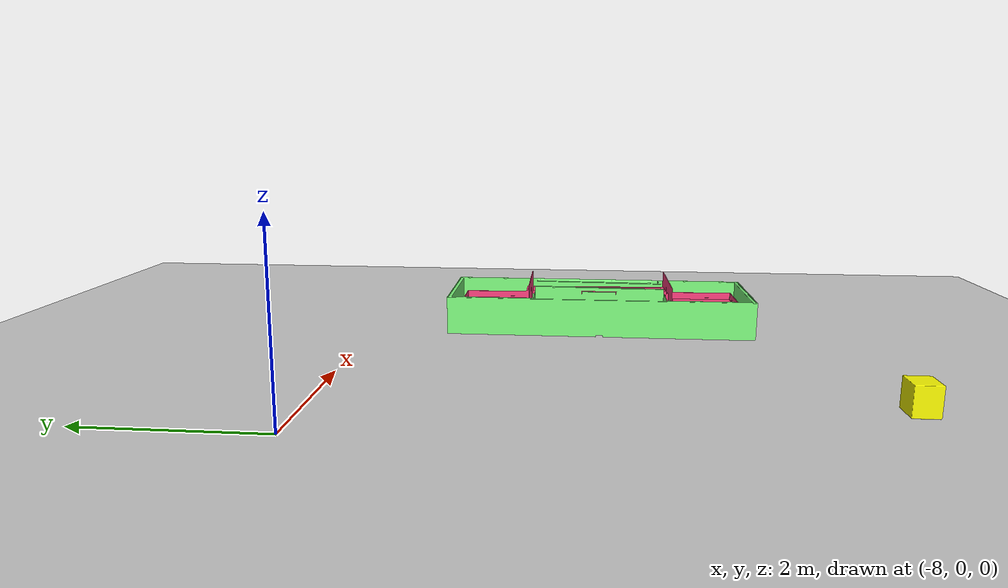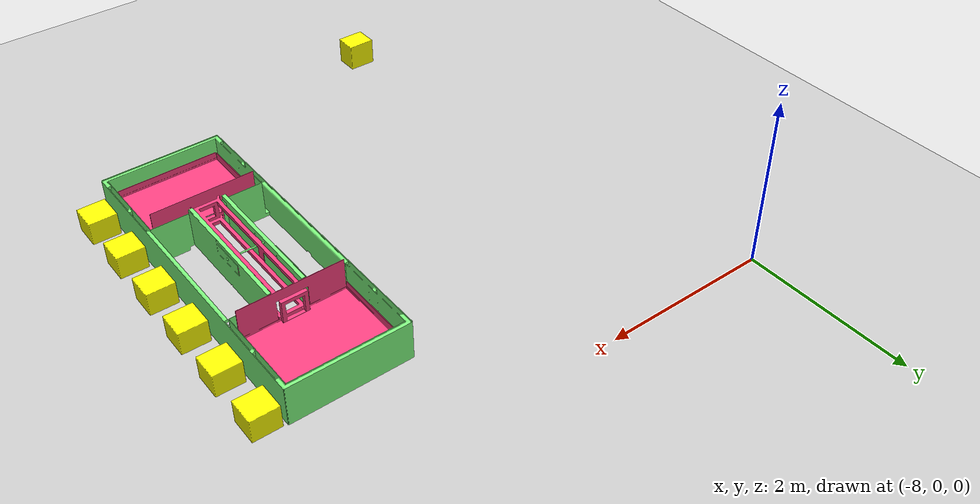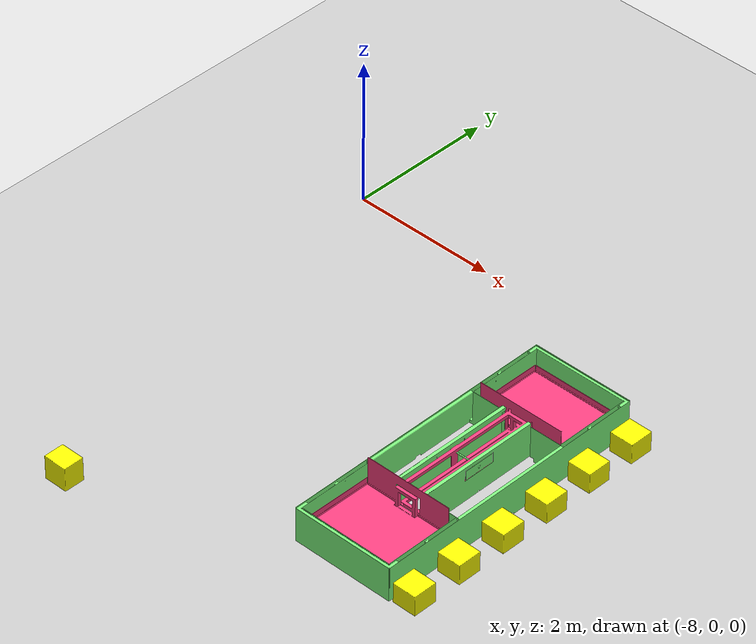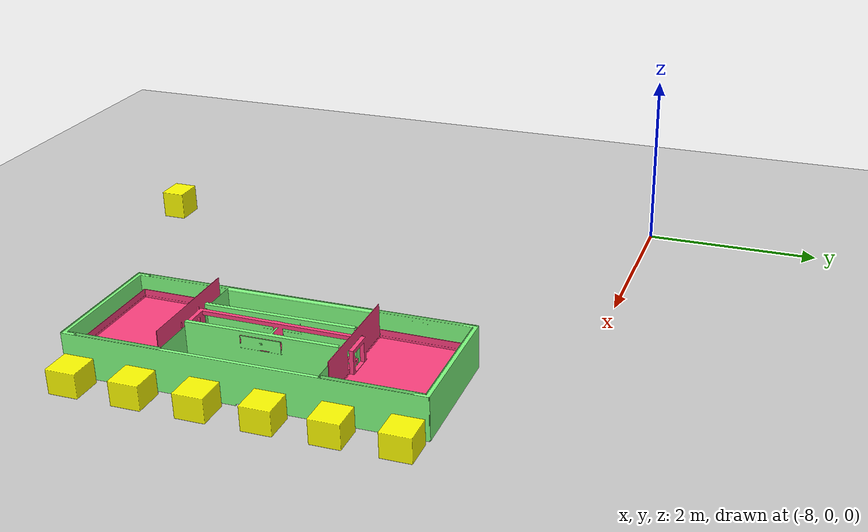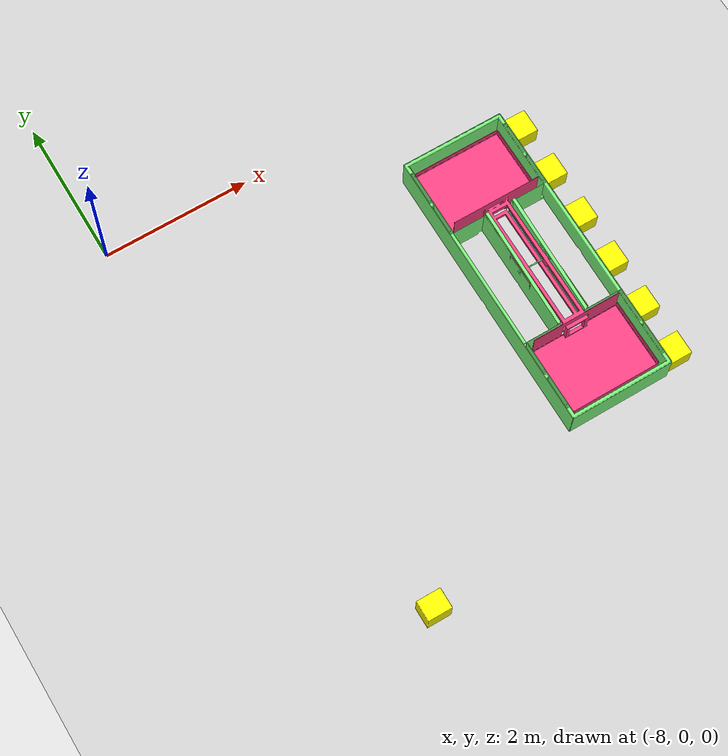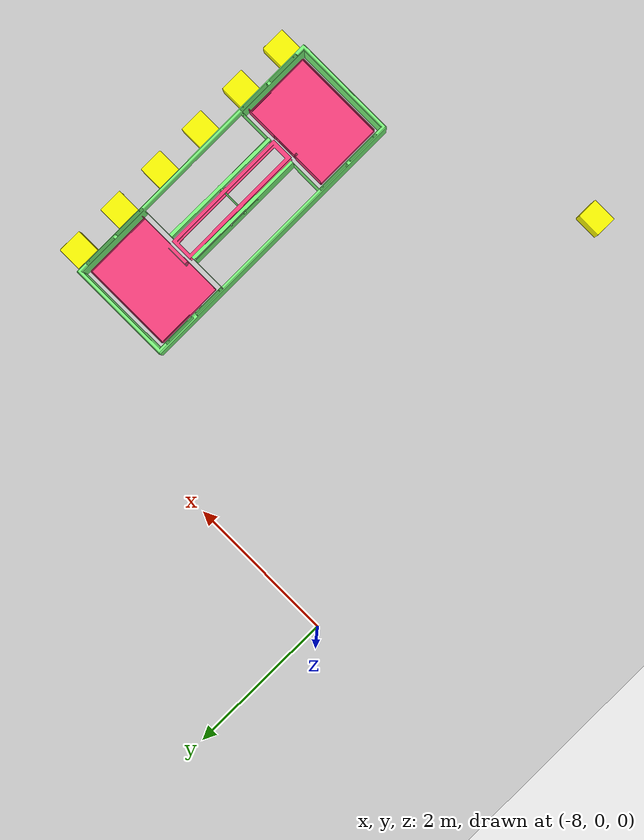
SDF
<sdf version="1.7">
 <world name="default">
  <model name="ground_plane">
   <static>1</static>
   <link name="link">
    <collision name="collision">
     <geometry><plane><normal>0 0 1</normal><size>100 100</size></plane></geometry>
     <surface>
      <contact><collide_bitmask>65535</collide_bitmask></contact>
      <friction><ode><mu>100</mu><mu2>50</mu2></ode></friction>
     </surface>
    </collision>
    <visual name="visual">
     <cast_shadows>0</cast_shadows>
     <geometry><plane><normal>0 0 1</normal><size>100 100</size></plane></geometry>
     <material>
      <script><uri>file://media/materials/scripts/gazebo.material</uri><name>Gazebo/Grey</name></script>
     </material>
    </visual>
   </link>
  </model>
  <model name="Cube">
   <pose>-6.83977 -5.82375 0.165099 1.57065 -0 5.3e-05</pose>
   <link name="Body">
    <pose>0 0 0.1397 1.5708 0 -1.5708</pose>
    <must_be_base_link>1</must_be_base_link>
    <velocity_decay><linear>0</linear><angular>0</angular></velocity_decay>
    <inertial>
     <mass>0.25</mass>
     <inertia><ixx>1</ixx><ixy>0</ixy><ixz>0</ixz><iyy>1</iyy><iyz>0</iyz><izz>1</izz></inertia>
    </inertial>
    <collision name="Body_collision">
     <pose>-0.1651 -0.1397 0.1651 0 -0 0</pose>
     <geometry><mesh><scale>1 1 1</scale><uri>model://Cube/meshes/Body_col.STL</uri></mesh></geometry>
     <surface>
      <contact><ode><kp>1e+06</kp><kd>2</kd></ode></contact>
      <friction><ode><mu>1</mu><mu2>1</mu2></ode></friction>
     </surface>
    </collision>
    <visual name="Body_visual">
     <pose>-0.1651 -0.1397 0.1651 0 -0 0</pose>
     <material><ambient>1 1 0 1</ambient><diffuse>1 1 0 1</diffuse></material>
     <geometry><mesh><scale>1 1 1</scale><uri>model://Cube/meshes/Body.STL</uri></mesh></geometry>
    </visual>
   </link>
  </model>
  <model name="Switch">
   <pose>-4.28075 -1.00838 0.02 0 -0 1.57424</pose>
   <link name="SwitchBase">
    <pose>-1.9493 -0.710661 0.235896 1.56084 -0.011168 -1.58453</pose>
    <velocity_decay><linear>0</linear><angular>0</angular></velocity_decay>
    <inertial>
     <mass>81.8371</mass>
     <inertia>
      <ixx>0.671725</ixx>
      <ixy>0.414975</ixy>
      <ixz>1.70825</ixz>
      <iyy>18.2757</iyy>
      <iyz>0.0226877</iyz>
      <izz>18.1735</izz>
     </inertia>
    </inertial>
    <collision name="SwitchBase_collision">
     <pose>0.002787 -0.234161 0.019236 0 -0 0</pose>
     <geometry><mesh><scale>1 1 1</scale><uri>model://Switch/meshes/SwitchBase_col.STL</uri></mesh></geometry>
     <surface><friction><ode><mu>1</mu><mu2>1</mu2></ode></friction></surface>
    </collision>
    <visual name="SwitchBase_visual">
     <pose>0.002787 -0.234161 0.019236 0 -0 0</pose>
     <material><ambient>0.501961 1 0.501961 1</ambient><diffuse>0.501961 1 0.501961 1</diffuse></material>
     <geometry><mesh><scale>1 1 1</scale><uri>model://Switch/meshes/SwitchBase.STL</uri></mesh></geometry>
    </visual>
   </link>
   <joint name="SwitchBase-World" type="fixed"><parent>world</parent><child>SwitchBase</child></joint>
   <link name="SwitchArm">
    <pose>-1.95097 -0.711214 0.27743 1.56084 -0.011168 -1.58453</pose>
    <velocity_decay><linear>0</linear><angular>0</angular></velocity_decay>
    <inertial>
     <mass>38.1968</mass>
     <inertia>
      <ixx>53.1684</ixx>
      <ixy>0.0207603</ixy>
      <ixz>0.709058</ixz>
      <iyy>55.0578</iyy>
      <iyz>0.00376744</iyz>
      <izz>1.94863</izz>
     </inertia>
    </inertial>
    <collision name="SwitchArm_collision">
     <pose>0.001748 -0.275668 0.017157 0 -0 0</pose>
     <geometry><mesh><scale>1 1 1</scale><uri>model://Switch/meshes/SwitchArm_col.STL</uri></mesh></geometry>
     <surface><friction><ode><mu>1</mu></ode></friction></surface>
    </collision>
    <visual name="SwitchArm_visual">
     <pose>0.001748 -0.275668 0.017157 0 -0 0</pose>
     <material><ambient>1 0.25098 0.501961 1</ambient><diffuse>1 0.25098 0.501961 1</diffuse></material>
     <geometry><mesh><scale>1 1 1</scale><uri>model://Switch/meshes/SwitchArm.STL</uri></mesh></geometry>
    </visual>
   </link>
   <joint name="SwitchBase-SwitchArm" type="revolute">
    <parent>SwitchBase</parent>
    <child>SwitchArm</child>
    <pose>0.001564 0.141796 -1.1e-05 0 -0 0</pose>
    <axis>
     <xyz>0.999843 -0.011029 -0.01384</xyz>
     <dynamics>
      <damping>1</damping>
      <friction>1</friction>
      <spring_reference>0</spring_reference>
      <spring_stiffness>0</spring_stiffness>
     </dynamics>
     <limit><upper>0.05</upper><lower>-0.05</lower><effort>1</effort></limit>
    </axis>
   </joint>
  </model>
  <model name="cube1">
   <pose>-2.66 -4.7 -0 0 -0 0</pose>
   <link name="Body">
    <pose>0 0 0.1397 1.5708 0 -1.5708</pose>
    <must_be_base_link>1</must_be_base_link>
    <velocity_decay><linear>0</linear><angular>0</angular></velocity_decay>
    <inertial>
     <mass>0.25</mass>
     <inertia><ixx>1</ixx><ixy>0</ixy><ixz>0</ixz><iyy>1</iyy><iyz>0</iyz><izz>1</izz></inertia>
    </inertial>
    <collision name="Body_collision">
     <pose>-0.1651 -0.1397 0.1651 0 -0 0</pose>
     <geometry><mesh><scale>1 1 1</scale><uri>model://Cube/meshes/Body_col.STL</uri></mesh></geometry>
     <surface>
      <contact><ode><kp>1e+06</kp><kd>2</kd></ode></contact>
      <friction><ode><mu>1</mu><mu2>1</mu2></ode></friction>
     </surface>
    </collision>
    <visual name="Body_visual">
     <pose>-0.1651 -0.1397 0.1651 0 -0 0</pose>
     <material><ambient>1 1 0 1</ambient><diffuse>1 1 0 1</diffuse></material>
     <geometry><mesh><scale>1 1 1</scale><uri>model://Cube/meshes/Body.STL</uri></mesh></geometry>
    </visual>
   </link>
  </model>
  <model name="cube2">
   <pose>-2.66 -4 -0 0 -0 0</pose>
   <link name="Body">
    <pose>0 0 0.1397 1.5708 0 -1.5708</pose>
    <must_be_base_link>1</must_be_base_link>
    <velocity_decay><linear>0</linear><angular>0</angular></velocity_decay>
    <inertial>
     <mass>0.25</mass>
     <inertia><ixx>1</ixx><ixy>0</ixy><ixz>0</ixz><iyy>1</iyy><iyz>0</iyz><izz>1</izz></inertia>
    </inertial>
    <collision name="Body_collision">
     <pose>-0.1651 -0.1397 0.1651 0 -0 0</pose>
     <geometry><mesh><scale>1 1 1</scale><uri>model://Cube/meshes/Body_col.STL</uri></mesh></geometry>
     <surface>
      <contact><ode><kp>1e+06</kp><kd>2</kd></ode></contact>
      <friction><ode><mu>1</mu><mu2>1</mu2></ode></friction>
     </surface>
    </collision>
    <visual name="Body_visual">
     <pose>-0.1651 -0.1397 0.1651 0 -0 0</pose>
     <material><ambient>1 1 0 1</ambient><diffuse>1 1 0 1</diffuse></material>
     <geometry><mesh><scale>1 1 1</scale><uri>model://Cube/meshes/Body.STL</uri></mesh></geometry>
    </visual>
   </link>
  </model>
  <model name="cube3">
   <pose>-2.66 -3.3 -0 0 -0 0</pose>
   <link name="Body">
    <pose>0 0 0.1397 1.5708 0 -1.5708</pose>
    <must_be_base_link>1</must_be_base_link>
    <velocity_decay><linear>0</linear><angular>0</angular></velocity_decay>
    <inertial>
     <mass>0.25</mass>
     <inertia><ixx>1</ixx><ixy>0</ixy><ixz>0</ixz><iyy>1</iyy><iyz>0</iyz><izz>1</izz></inertia>
    </inertial>
    <collision name="Body_collision">
     <pose>-0.1651 -0.1397 0.1651 0 -0 0</pose>
     <geometry><mesh><scale>1 1 1</scale><uri>model://Cube/meshes/Body_col.STL</uri></mesh></geometry>
     <surface>
      <contact><ode><kp>1e+06</kp><kd>2</kd></ode></contact>
      <friction><ode><mu>1</mu><mu2>1</mu2></ode></friction>
     </surface>
    </collision>
    <visual name="Body_visual">
     <pose>-0.1651 -0.1397 0.1651 0 -0 0</pose>
     <material><ambient>1 1 0 1</ambient><diffuse>1 1 0 1</diffuse></material>
     <geometry><mesh><scale>1 1 1</scale><uri>model://Cube/meshes/Body.STL</uri></mesh></geometry>
    </visual>
   </link>
  </model>
  <model name="cube4">
   <pose>-2.66 -2.6 -0 0 -0 0</pose>
   <link name="Body">
    <pose>0 0 0.1397 1.5708 0 -1.5708</pose>
    <must_be_base_link>1</must_be_base_link>
    <velocity_decay><linear>0</linear><angular>0</angular></velocity_decay>
    <inertial>
     <mass>0.25</mass>
     <inertia><ixx>1</ixx><ixy>0</ixy><ixz>0</ixz><iyy>1</iyy><iyz>0</iyz><izz>1</izz></inertia>
    </inertial>
    <collision name="Body_collision">
     <pose>-0.1651 -0.1397 0.1651 0 -0 0</pose>
     <geometry><mesh><scale>1 1 1</scale><uri>model://Cube/meshes/Body_col.STL</uri></mesh></geometry>
     <surface>
      <contact><ode><kp>1e+06</kp><kd>2</kd></ode></contact>
      <friction><ode><mu>1</mu><mu2>1</mu2></ode></friction>
     </surface>
    </collision>
    <visual name="Body_visual">
     <pose>-0.1651 -0.1397 0.1651 0 -0 0</pose>
     <material><ambient>1 1 0 1</ambient><diffuse>1 1 0 1</diffuse></material>
     <geometry><mesh><scale>1 1 1</scale><uri>model://Cube/meshes/Body.STL</uri></mesh></geometry>
    </visual>
   </link>
  </model>
  <model name="cube5">
   <pose>-2.66 -1.9 -0 0 -0 0</pose>
   <link name="Body">
    <pose>0 0 0.1397 1.5708 0 -1.5708</pose>
    <must_be_base_link>1</must_be_base_link>
    <velocity_decay><linear>0</linear><angular>0</angular></velocity_decay>
    <inertial>
     <mass>0.25</mass>
     <inertia><ixx>1</ixx><ixy>0</ixy><ixz>0</ixz><iyy>1</iyy><iyz>0</iyz><izz>1</izz></inertia>
    </inertial>
    <collision name="Body_collision">
     <pose>-0.1651 -0.1397 0.1651 0 -0 0</pose>
     <geometry><mesh><scale>1 1 1</scale><uri>model://Cube/meshes/Body_col.STL</uri></mesh></geometry>
     <surface>
      <contact><ode><kp>1e+06</kp><kd>2</kd></ode></contact>
      <friction><ode><mu>1</mu><mu2>1</mu2></ode></friction>
     </surface>
    </collision>
    <visual name="Body_visual">
     <pose>-0.1651 -0.1397 0.1651 0 -0 0</pose>
     <material><ambient>1 1 0 1</ambient><diffuse>1 1 0 1</diffuse></material>
     <geometry><mesh><scale>1 1 1</scale><uri>model://Cube/meshes/Body.STL</uri></mesh></geometry>
    </visual>
   </link>
  </model>
  <model name="cube6">
   <pose>-2.66 -1.2 -0 0 -0 0</pose>
   <link name="Body">
    <pose>0 0 0.1397 1.5708 0 -1.5708</pose>
    <must_be_base_link>1</must_be_base_link>
    <velocity_decay><linear>0</linear><angular>0</angular></velocity_decay>
    <inertial>
     <mass>0.25</mass>
     <inertia><ixx>1</ixx><ixy>0</ixy><ixz>0</ixz><iyy>1</iyy><iyz>0</iyz><izz>1</izz></inertia>
    </inertial>
    <collision name="Body_collision">
     <pose>-0.1651 -0.1397 0.1651 0 -0 0</pose>
     <geometry><mesh><scale>1 1 1</scale><uri>model://Cube/meshes/Body_col.STL</uri></mesh></geometry>
     <surface>
      <contact><ode><kp>1e+06</kp><kd>2</kd></ode></contact>
      <friction><ode><mu>1</mu><mu2>1</mu2></ode></friction>
     </surface>
    </collision>
    <visual name="Body_visual">
     <pose>-0.1651 -0.1397 0.1651 0 -0 0</pose>
     <material><ambient>1 1 0 1</ambient><diffuse>1 1 0 1</diffuse></material>
     <geometry><mesh><scale>1 1 1</scale><uri>model://Cube/meshes/Body.STL</uri></mesh></geometry>
    </visual>
   </link>
  </model>
 </world>
</sdf>
